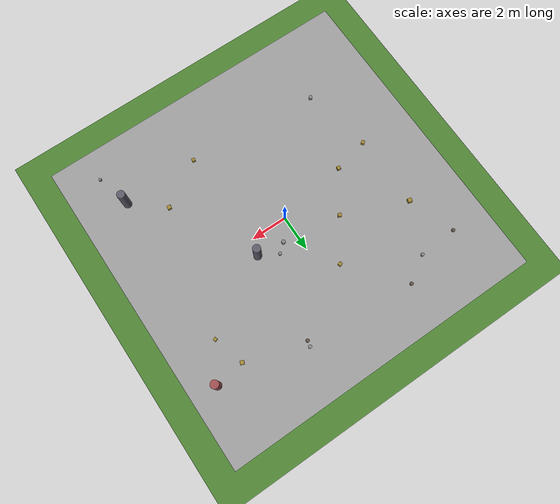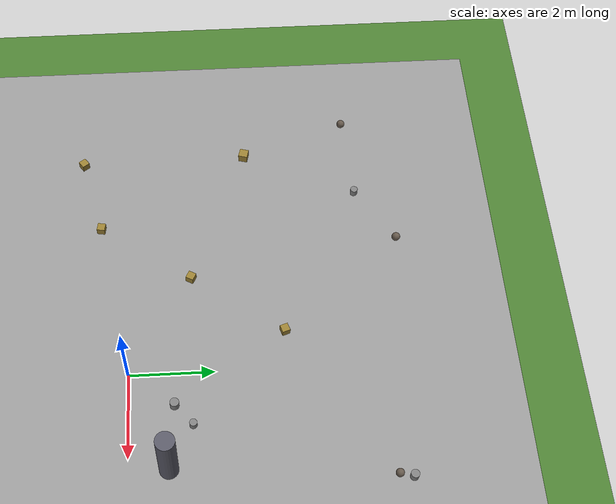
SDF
<?xml version="1.0" ?>
<sdf version="1.9">
  <world name="open_plaza">
    <physics name="1ms" type="ignore">
      <max_step_size>0.001</max_step_size>
      <real_time_factor>1.0</real_time_factor>
    </physics>
    <plugin filename="gz-sim-physics-system" name="gz::sim::systems::Physics"/>
    <plugin filename="gz-sim-scene-broadcaster-system" name="gz::sim::systems::SceneBroadcaster"/>
    <plugin filename="gz-sim-sensors-system" name="gz::sim::systems::Sensors">
      <render_engine>ogre2</render_engine>
    </plugin>
    <plugin filename="gz-sim-user-commands-system" name="gz::sim::systems::UserCommands"/>

    <light type="directional" name="sun">
      <cast_shadows>true</cast_shadows>
      <pose>0 0 10 0 0 0</pose>
      <diffuse>0.8 0.8 0.8 1</diffuse>
      <specular>0.2 0.2 0.2 1</specular>
      <attenuation><range>1000</range><constant>0.9</constant><linear>0.01</linear><quadratic>0.001</quadratic></attenuation>
      <direction>-0.5 0.1 -0.9</direction>
    </light>

    <!-- 레이아웃 4: 개방 광장형 -->

    <model name="ground_plane_visual">
      <static>true</static>
      <pose>0 0 -0.01 0 0 0</pose>
      <link name="link">
        <collision name="collision"><geometry><box><size>60.0 60.0 0.02</size></box></geometry></collision>
        <visual name="visual"><geometry><box><size>60.0 60.0 0.02</size></box></geometry>
          <material><ambient>0.3 0.5 0.2 1</ambient><diffuse>0.3 0.5 0.2 1</diffuse></material></visual>
      </link>
    </model>

    <model name="plaza_floor">
      <static>true</static>
      <pose>0 0 0.01 0 0 0</pose>
      <link name="link">
        <collision name="collision"><geometry><box><size>18.0 18.0 0.02</size></box></geometry></collision>
        <visual name="visual"><geometry><box><size>18.0 18.0 0.02</size></box></geometry>
          <material><ambient>0.6 0.6 0.6 1</ambient><diffuse>0.6 0.6 0.6 1</diffuse></material></visual>
      </link>
    </model>

    <model name="plaza_obstacle_0">
      <static>true</static>
      <pose>-3.35 6.55 0.12 0 0 0</pose>
      <link name="link">
        <collision name="collision"><geometry><sphere><radius>0.10307016297971282</radius></sphere></geometry></collision>
        <visual name="visual"><geometry><sphere><radius>0.10307016297971282</radius></sphere></geometry>
          <material><ambient>0.4 0.35 0.3 1</ambient><diffuse>0.4 0.35 0.3 1</diffuse></material></visual>
      </link>
    </model>

    <model name="plaza_obstacle_1">
      <static>true</static>
      <pose>2.66 5.91 0.12 0 0 0</pose>
      <link name="link">
        <collision name="collision"><geometry><sphere><radius>0.09743350085385759</radius></sphere></geometry></collision>
        <visual name="visual"><geometry><sphere><radius>0.09743350085385759</radius></sphere></geometry>
          <material><ambient>0.4 0.35 0.3 1</ambient><diffuse>0.4 0.35 0.3 1</diffuse></material></visual>
      </link>
    </model>

    <model name="plaza_obstacle_2">
      <static>true</static>
      <pose>-6.87 5.53 0.12 0 0 0</pose>
      <link name="link">
        <collision name="collision"><geometry><sphere><radius>0.10106422599638243</radius></sphere></geometry></collision>
        <visual name="visual"><geometry><sphere><radius>0.10106422599638243</radius></sphere></geometry>
          <material><ambient>0.4 0.35 0.3 1</ambient><diffuse>0.4 0.35 0.3 1</diffuse></material></visual>
      </link>
    </model>

    <model name="plaza_obstacle_3">
      <static>true</static>
      <pose>-5.98 2.95 0.13 0 0 1.31</pose>
      <link name="link">
        <collision name="collision"><geometry><box><size>0.22 0.22 0.22</size></box></geometry></collision>
        <visual name="visual"><geometry><box><size>0.22 0.22 0.22</size></box></geometry>
          <material><ambient>0.6 0.5 0.2 1</ambient><diffuse>0.6 0.5 0.2 1</diffuse></material></visual>
      </link>
    </model>

    <model name="plaza_obstacle_4">
      <static>true</static>
      <pose>5.94 4.96 0.12 0 0 1.17</pose>
      <link name="link">
        <collision name="collision"><geometry><box><size>0.21 0.21 0.21</size></box></geometry></collision>
        <visual name="visual"><geometry><box><size>0.21 0.21 0.21</size></box></geometry>
          <material><ambient>0.6 0.5 0.2 1</ambient><diffuse>0.6 0.5 0.2 1</diffuse></material></visual>
      </link>
    </model>

    <model name="plaza_obstacle_5">
      <static>true</static>
      <pose>4.70 -3.89 0.12 0 0 1.41</pose>
      <link name="link">
        <collision name="collision"><geometry><box><size>0.21 0.21 0.21</size></box></geometry></collision>
        <visual name="visual"><geometry><box><size>0.21 0.21 0.21</size></box></geometry>
          <material><ambient>0.6 0.5 0.2 1</ambient><diffuse>0.6 0.5 0.2 1</diffuse></material></visual>
      </link>
    </model>

    <model name="plaza_obstacle_6">
      <static>true</static>
      <pose>2.73 6.22 0.12 0 0 0</pose>
      <link name="link">
        <collision name="collision"><geometry><cylinder><radius>0.09735256259129679</radius><length>0.19470512518259359</length></cylinder></geometry></collision>
        <visual name="visual"><geometry><cylinder><radius>0.09735256259129679</radius><length>0.19470512518259359</length></cylinder></geometry>
          <material><ambient>0.5 0.5 0.5 1</ambient><diffuse>0.5 0.5 0.5 1</diffuse></material></visual>
      </link>
    </model>

    <model name="plaza_obstacle_7">
      <static>true</static>
      <pose>-2.46 1.51 0.12 0 0 1.08</pose>
      <link name="link">
        <collision name="collision"><geometry><box><size>0.19 0.19 0.19</size></box></geometry></collision>
        <visual name="visual"><geometry><box><size>0.19 0.19 0.19</size></box></geometry>
          <material><ambient>0.6 0.5 0.2 1</ambient><diffuse>0.6 0.5 0.2 1</diffuse></material></visual>
      </link>
    </model>

    <model name="plaza_obstacle_8">
      <static>true</static>
      <pose>-0.95 3.66 0.11 0 0 0.32</pose>
      <link name="link">
        <collision name="collision"><geometry><box><size>0.19 0.19 0.19</size></box></geometry></collision>
        <visual name="visual"><geometry><box><size>0.19 0.19 0.19</size></box></geometry>
          <material><ambient>0.6 0.5 0.2 1</ambient><diffuse>0.6 0.5 0.2 1</diffuse></material></visual>
      </link>
    </model>

    <model name="plaza_obstacle_9">
      <static>true</static>
      <pose>-3.95 -0.65 0.12 0 0 1.40</pose>
      <link name="link">
        <collision name="collision"><geometry><box><size>0.19 0.19 0.19</size></box></geometry></collision>
        <visual name="visual"><geometry><box><size>0.19 0.19 0.19</size></box></geometry>
          <material><ambient>0.6 0.5 0.2 1</ambient><diffuse>0.6 0.5 0.2 1</diffuse></material></visual>
      </link>
    </model>

    <model name="plaza_obstacle_10">
      <static>true</static>
      <pose>0.80 1.05 0.13 0 0 0</pose>
      <link name="link">
        <collision name="collision"><geometry><cylinder><radius>0.10603174151335965</radius><length>0.2120634830267193</length></cylinder></geometry></collision>
        <visual name="visual"><geometry><cylinder><radius>0.10603174151335965</radius><length>0.2120634830267193</length></cylinder></geometry>
          <material><ambient>0.5 0.5 0.5 1</ambient><diffuse>0.5 0.5 0.5 1</diffuse></material></visual>
      </link>
    </model>

    <model name="plaza_obstacle_11">
      <static>true</static>
      <pose>-5.90 -1.11 0.12 0 0 0.61</pose>
      <link name="link">
        <collision name="collision"><geometry><box><size>0.19 0.19 0.19</size></box></geometry></collision>
        <visual name="visual"><geometry><box><size>0.19 0.19 0.19</size></box></geometry>
          <material><ambient>0.6 0.5 0.2 1</ambient><diffuse>0.6 0.5 0.2 1</diffuse></material></visual>
      </link>
    </model>

    <model name="plaza_obstacle_12">
      <static>true</static>
      <pose>6.93 -7.31 0.10 0 0 0</pose>
      <link name="link">
        <collision name="collision"><geometry><cylinder><radius>0.0799610947253626</radius><length>0.1599221894507252</length></cylinder></geometry></collision>
        <visual name="visual"><geometry><cylinder><radius>0.0799610947253626</radius><length>0.1599221894507252</length></cylinder></geometry>
          <material><ambient>0.5 0.5 0.5 1</ambient><diffuse>0.5 0.5 0.5 1</diffuse></material></visual>
      </link>
    </model>

    <model name="plaza_obstacle_13">
      <static>true</static>
      <pose>2.22 -5.44 0.11 0 0 1.39</pose>
      <link name="link">
        <collision name="collision"><geometry><box><size>0.18 0.18 0.18</size></box></geometry></collision>
        <visual name="visual"><geometry><box><size>0.18 0.18 0.18</size></box></geometry>
          <material><ambient>0.6 0.5 0.2 1</ambient><diffuse>0.6 0.5 0.2 1</diffuse></material></visual>
      </link>
    </model>

    <model name="plaza_obstacle_14">
      <static>true</static>
      <pose>-4.75 5.66 0.11 0 0 0</pose>
      <link name="link">
        <collision name="collision"><geometry><cylinder><radius>0.08811646851310402</radius><length>0.17623293702620804</length></cylinder></geometry></collision>
        <visual name="visual"><geometry><cylinder><radius>0.08811646851310402</radius><length>0.17623293702620804</length></cylinder></geometry>
          <material><ambient>0.5 0.5 0.5 1</ambient><diffuse>0.5 0.5 0.5 1</diffuse></material></visual>
      </link>
    </model>

    <model name="plaza_obstacle_15">
      <static>true</static>
      <pose>6.42 3.26 0.10 0 0 0.33</pose>
      <link name="link">
        <collision name="collision"><geometry><box><size>0.17 0.17 0.17</size></box></geometry></collision>
        <visual name="visual"><geometry><box><size>0.17 0.17 0.17</size></box></geometry>
          <material><ambient>0.6 0.5 0.2 1</ambient><diffuse>0.6 0.5 0.2 1</diffuse></material></visual>
      </link>
    </model>

    <model name="plaza_obstacle_16">
      <static>true</static>
      <pose>1.29 1.46 0.11 0 0 0</pose>
      <link name="link">
        <collision name="collision"><geometry><cylinder><radius>0.08757728990469785</radius><length>0.1751545798093957</length></cylinder></geometry></collision>
        <visual name="visual"><geometry><cylinder><radius>0.08757728990469785</radius><length>0.1751545798093957</length></cylinder></geometry>
          <material><ambient>0.5 0.5 0.5 1</ambient><diffuse>0.5 0.5 0.5 1</diffuse></material></visual>
      </link>
    </model>

    <model name="plaza_obstacle_17">
      <static>true</static>
      <pose>-5.09 -4.91 0.12 0 0 0</pose>
      <link name="link">
        <collision name="collision"><geometry><cylinder><radius>0.10255905102149468</radius><length>0.20511810204298936</length></cylinder></geometry></collision>
        <visual name="visual"><geometry><cylinder><radius>0.10255905102149468</radius><length>0.20511810204298936</length></cylinder></geometry>
          <material><ambient>0.5 0.5 0.5 1</ambient><diffuse>0.5 0.5 0.5 1</diffuse></material></visual>
      </link>
    </model>

    <model name="plaza_pedestrian_static_0">
      <static>true</static>
      <pose>6.41 -5.32 0.85 0 0 0</pose>
      <link name="link">
        <collision name="collision"><geometry><cylinder><radius>0.22</radius><length>1.7</length></cylinder></geometry></collision>
        <visual name="visual"><geometry><cylinder><radius>0.22</radius><length>1.7</length></cylinder></geometry>
          <material><ambient>0.35 0.35 0.4 1</ambient><diffuse>0.35 0.35 0.4 1</diffuse></material></visual>
      </link>
    </model>

    <model name="plaza_pedestrian_static_1">
      <static>true</static>
      <pose>2.30 0.90 0.85 0 0 0</pose>
      <link name="link">
        <collision name="collision"><geometry><cylinder><radius>0.22</radius><length>1.7</length></cylinder></geometry></collision>
        <visual name="visual"><geometry><cylinder><radius>0.22</radius><length>1.7</length></cylinder></geometry>
          <material><ambient>0.35 0.35 0.4 1</ambient><diffuse>0.35 0.35 0.4 1</diffuse></material></visual>
      </link>
    </model>

    <model name="plaza_pedestrian_dynamic_0">
      <static>false</static>
      <pose>7.54 5.21 0.85 0 0 0</pose>
      <link name="link">
        <collision name="collision"><geometry><cylinder><radius>0.22</radius><length>1.7</length></cylinder></geometry></collision>
        <visual name="visual"><geometry><cylinder><radius>0.22</radius><length>1.7</length></cylinder></geometry>
          <material><ambient>0.6 0.3 0.3 1</ambient><diffuse>0.6 0.3 0.3 1</diffuse></material></visual>
      </link>
    </model>

  </world>
</sdf>
